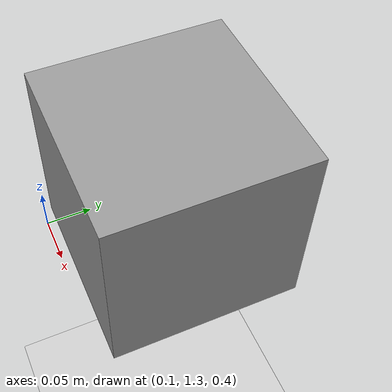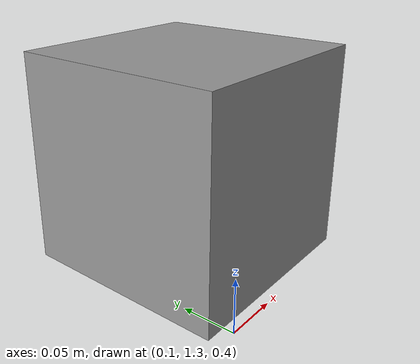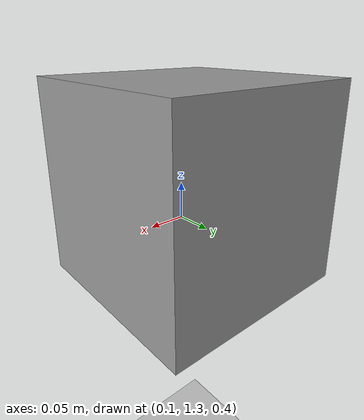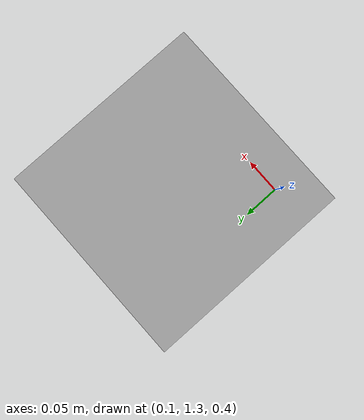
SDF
<?xml version="1.0" ?>

<sdf version="1.6">

  <world name="default">

    <gravity>0 0 -9.81</gravity>

    <include>
      <uri>model://sun</uri>
    </include>
    <include>
      <uri>model://ground_plane</uri>
    </include>

    <physics name="ode_70iters" type="ode">
      <real_time_update_rate>1500</real_time_update_rate>
      <ode>
        <solver>
          <type>quick</type>
          <iters>70</iters>
        </solver>
      </ode>
    </physics>

    <physics name="ode_200iters" type="ode" default="true">
      <ode>
        <solver>
          <type>quick</type>
          <iters>200</iters>
        </solver>
      </ode>
    </physics>

    <physics name="ode_500iters" type="ode">
      <ode>
        <solver>
          <type>quick</type>
          <iters>500</iters>
        </solver>
      </ode>
    </physics>

    <model name='unit_box'>
      <pose>0.180332 1.4103 0.5 0 -0 0</pose>
      <link name='link'>
        <inertial>
          <mass>1</mass>
          <inertia>
            <ixx>0.166667</ixx>
            <ixy>0</ixy>
            <ixz>0</ixz>
            <iyy>0.166667</iyy>
            <iyz>0</iyz>
            <izz>0.166667</izz>
          </inertia>
          <pose>0 0 0 0 -0 0</pose>
        </inertial>
        <collision name='collision'>
          <geometry>
            <box>
              <size>0.2 0.2 0.2</size>
            </box>
          </geometry>
          <max_contacts>10</max_contacts>
          <surface>
            <contact>
              <ode/>
            </contact>
            <bounce/>
            <friction>
              <torsional>
                <ode/>
              </torsional>
              <ode/>
            </friction>
          </surface>
        </collision>
        <visual name='visual'>
          <geometry>
            <box>
              <size>0.2 0.2 0.2</size>
            </box>
          </geometry>
          <material>
            <script>
              <name>Gazebo/Grey</name>
              <uri>file://media/materials/scripts/gazebo.material</uri>
            </script>
          </material>
        </visual>
        <self_collide>0</self_collide>
        <enable_wind>0</enable_wind>
        <kinematic>0</kinematic>
      </link>
    </model>

  </world>
</sdf>
